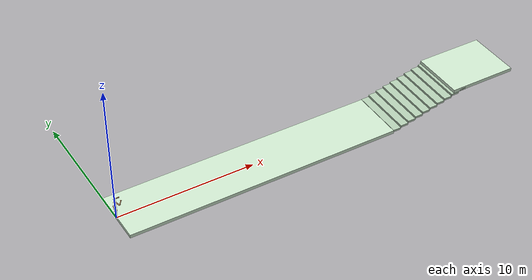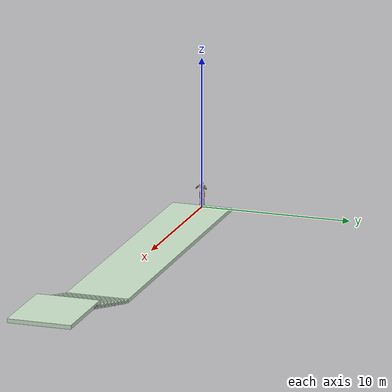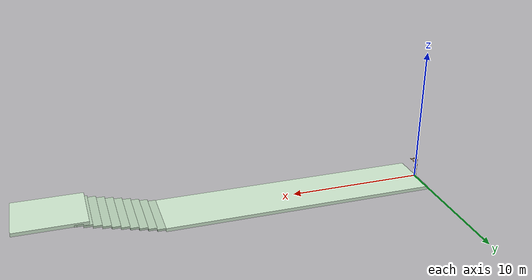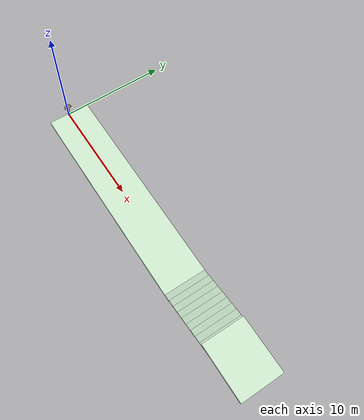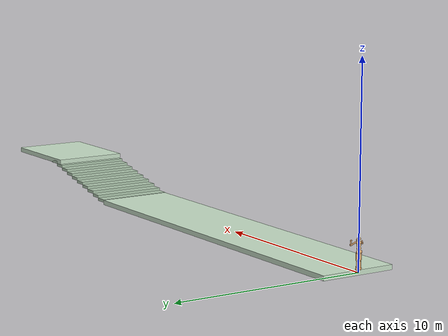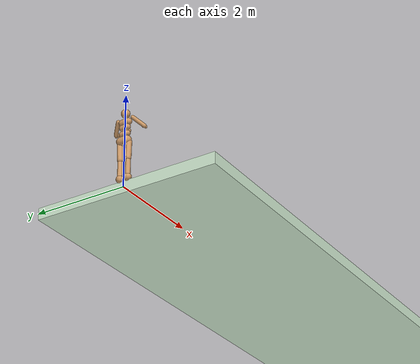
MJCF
<mujoco model="humanoid">
    <compiler angle="degree" inertiafromgeom="true"/>
    <default>
        <joint armature="1" damping="1" limited="true"/>
        <geom conaffinity="1" condim="1" contype="1" margin="0.001" material="geom" rgba="0.8 0.6 .4 1"/>
        <motor ctrllimited="true" ctrlrange="-.4 .4"/>
    </default>
    <option integrator="RK4" iterations="50" solver="PGS" timestep="0.003">
    </option>
    <size nkey="5" nuser_geom="1"/>
    <visual>
        <map fogend="5" fogstart="3"/>
    </visual>
    <asset>
        <texture builtin="gradient" height="100" rgb1=".4 .5 .6" rgb2="0 0 0" type="skybox" width="100"/>
        <texture builtin="flat" height="1278" mark="cross" markrgb="1 1 1" name="texgeom" random="0.01" rgb1="0.8 0.6 0.4" rgb2="0.8 0.6 0.4" type="cube" width="127"/>
        <texture builtin="checker" height="100" name="texplane" rgb1="0 0 0" rgb2="0.8 0.8 0.8" type="2d" width="100"/>
        <material name="MatPlane" reflectance="0.5" shininess="1" specular="1" texrepeat="60 60" texture="texplane"/>
        <material name="geom" texture="texgeom" texuniform="true"/>
    </asset>
    <worldbody>
        <light cutoff="100" diffuse="1 1 1" dir="-0 0 -1.3" directional="true" exponent="1" pos="0 0 1.3" specular=".1 .1 .1"/>

        <!-- Stairs configuration: 10 steps, each 0.6m deep, 0.15m high, 2m wide -->
        <!-- Extended starting platform - 20m of flat terrain before stairs -->
        <!-- Agent spawns at x=0, stairs begin at x=20 -->
        <geom condim="3" friction="1 .1 .1" material="MatPlane" name="start_platform" pos="10 0 0" rgba="0.8 0.9 0.8 1" size="10 2 0.125" type="box"/>

        <!-- Stair steps - start at x=20 -->
        <geom condim="3" friction="1 .1 .1" material="MatPlane" name="stair_1" pos="20.3 0 0.075" rgba="0.7 0.8 0.7 1" size="0.3 2 0.075" type="box"/>
        <geom condim="3" friction="1 .1 .1" material="MatPlane" name="stair_2" pos="20.9 0 0.225" rgba="0.7 0.8 0.7 1" size="0.3 2 0.075" type="box"/>
        <geom condim="3" friction="1 .1 .1" material="MatPlane" name="stair_3" pos="21.5 0 0.375" rgba="0.7 0.8 0.7 1" size="0.3 2 0.075" type="box"/>
        <geom condim="3" friction="1 .1 .1" material="MatPlane" name="stair_4" pos="22.1 0 0.525" rgba="0.7 0.8 0.7 1" size="0.3 2 0.075" type="box"/>
        <geom condim="3" friction="1 .1 .1" material="MatPlane" name="stair_5" pos="22.7 0 0.675" rgba="0.7 0.8 0.7 1" size="0.3 2 0.075" type="box"/>
        <geom condim="3" friction="1 .1 .1" material="MatPlane" name="stair_6" pos="23.3 0 0.825" rgba="0.7 0.8 0.7 1" size="0.3 2 0.075" type="box"/>
        <geom condim="3" friction="1 .1 .1" material="MatPlane" name="stair_7" pos="23.9 0 0.975" rgba="0.7 0.8 0.7 1" size="0.3 2 0.075" type="box"/>
        <geom condim="3" friction="1 .1 .1" material="MatPlane" name="stair_8" pos="24.5 0 1.125" rgba="0.7 0.8 0.7 1" size="0.3 2 0.075" type="box"/>
        <geom condim="3" friction="1 .1 .1" material="MatPlane" name="stair_9" pos="25.1 0 1.275" rgba="0.7 0.8 0.7 1" size="0.3 2 0.075" type="box"/>
        <geom condim="3" friction="1 .1 .1" material="MatPlane" name="stair_10" pos="25.7 0 1.425" rgba="0.7 0.8 0.7 1" size="0.3 2 0.075" type="box"/>

        <!-- End platform (flat area after stairs) -->
        <geom condim="3" friction="1 .1 .1" material="MatPlane" name="end_platform" pos="27.5 0 1.5" rgba="0.8 0.9 0.8 1" size="2.5 2 0.125" type="box"/>
        <body name="torso" pos="0 0 1.4">
            <camera name="track" mode="trackcom" pos="0 -4 0" xyaxes="1 0 0 0 0 1"/>
            <joint armature="0" damping="0" limited="false" name="root" pos="0 0 0" stiffness="0" type="free"/>
            <geom fromto="0 -.07 0 0 .07 0" name="torso1" size="0.07" type="capsule"/>
            <geom name="head" pos="0 0 .19" size=".09" type="sphere" user="258"/>
            <geom fromto="-.01 -.06 -.12 -.01 .06 -.12" name="uwaist" size="0.06" type="capsule"/>
            <body name="lwaist" pos="-.01 0 -0.260" quat="1.000 0 -0.002 0">
                <geom fromto="0 -.06 0 0 .06 0" name="lwaist" size="0.06" type="capsule"/>
                <joint armature="0.02" axis="0 0 1" damping="5" name="abdomen_z" pos="0 0 0.065" range="-45 45" stiffness="20" type="hinge"/>
                <joint armature="0.02" axis="0 1 0" damping="5" name="abdomen_y" pos="0 0 0.065" range="-75 30" stiffness="10" type="hinge"/>
                <body name="pelvis" pos="0 0 -0.165" quat="1.000 0 -0.002 0">
                    <joint armature="0.02" axis="1 0 0" damping="5" name="abdomen_x" pos="0 0 0.1" range="-35 35" stiffness="10" type="hinge"/>
                    <geom fromto="-.02 -.07 0 -.02 .07 0" name="butt" size="0.09" type="capsule"/>
                    <body name="right_thigh" pos="0 -0.1 -0.04">
                        <joint armature="0.01" axis="1 0 0" damping="5" name="right_hip_x" pos="0 0 0" range="-25 5" stiffness="10" type="hinge"/>
                        <joint armature="0.01" axis="0 0 1" damping="5" name="right_hip_z" pos="0 0 0" range="-60 35" stiffness="10" type="hinge"/>
                        <joint armature="0.0080" axis="0 1 0" damping="5" name="right_hip_y" pos="0 0 0" range="-110 20" stiffness="20" type="hinge"/>
                        <geom fromto="0 0 0 0 0.01 -.34" name="right_thigh1" size="0.06" type="capsule"/>
                        <body name="right_shin" pos="0 0.01 -0.403">
                            <joint armature="0.0060" axis="0 -1 0" name="right_knee" pos="0 0 .02" range="-160 -2" type="hinge"/>
                            <geom fromto="0 0 0 0 0 -.3" name="right_shin1" size="0.049" type="capsule"/>
                            <body name="right_foot" pos="0 0 -0.45">
                                <geom name="right_foot" pos="0 0 0.1" size="0.075" type="sphere" user="0"/>
                            </body>
                        </body>
                    </body>
                    <body name="left_thigh" pos="0 0.1 -0.04">
                        <joint armature="0.01" axis="-1 0 0" damping="5" name="left_hip_x" pos="0 0 0" range="-25 5" stiffness="10" type="hinge"/>
                        <joint armature="0.01" axis="0 0 -1" damping="5" name="left_hip_z" pos="0 0 0" range="-60 35" stiffness="10" type="hinge"/>
                        <joint armature="0.01" axis="0 1 0" damping="5" name="left_hip_y" pos="0 0 0" range="-110 20" stiffness="20" type="hinge"/>
                        <geom fromto="0 0 0 0 -0.01 -.34" name="left_thigh1" size="0.06" type="capsule"/>
                        <body name="left_shin" pos="0 -0.01 -0.403">
                            <joint armature="0.0060" axis="0 -1 0" name="left_knee" pos="0 0 .02" range="-160 -2" stiffness="1" type="hinge"/>
                            <geom fromto="0 0 0 0 0 -.3" name="left_shin1" size="0.049" type="capsule"/>
                            <body name="left_foot" pos="0 0 -0.45">
                                <geom name="left_foot" type="sphere" size="0.075" pos="0 0 0.1" user="0" />
                            </body>
                        </body>
                    </body>
                </body>
            </body>
            <body name="right_upper_arm" pos="0 -0.17 0.06">
                <joint armature="0.0068" axis="2 1 1" name="right_shoulder1" pos="0 0 0" range="-85 60" stiffness="1" type="hinge"/>
                <joint armature="0.0051" axis="0 -1 1" name="right_shoulder2" pos="0 0 0" range="-85 60" stiffness="1" type="hinge"/>
                <geom fromto="0 0 0 .16 -.16 -.16" name="right_uarm1" size="0.04 0.16" type="capsule"/>
                <body name="right_lower_arm" pos=".18 -.18 -.18">
                    <joint armature="0.0028" axis="0 -1 1" name="right_elbow" pos="0 0 0" range="-90 50" stiffness="0" type="hinge"/>
                    <geom fromto="0.01 0.01 0.01 .17 .17 .17" name="right_larm" size="0.031" type="capsule"/>
                    <geom name="right_hand" pos=".18 .18 .18" size="0.04" type="sphere"/>
                    <camera pos="0 0 0"/>
                </body>
            </body>
            <body name="left_upper_arm" pos="0 0.17 0.06">
                <joint armature="0.0068" axis="2 -1 1" name="left_shoulder1" pos="0 0 0" range="-60 85" stiffness="1" type="hinge"/>
                <joint armature="0.0051" axis="0 1 1" name="left_shoulder2" pos="0 0 0" range="-60 85" stiffness="1" type="hinge"/>
                <geom fromto="0 0 0 .16 .16 -.16" name="left_uarm1" size="0.04 0.16" type="capsule"/>
                <body name="left_lower_arm" pos=".18 .18 -.18">
                    <joint armature="0.0028" axis="0 -1 -1" name="left_elbow" pos="0 0 0" range="-90 50" stiffness="0" type="hinge"/>
                    <geom fromto="0.01 -0.01 0.01 .17 -.17 .17" name="left_larm" size="0.031" type="capsule"/>
                    <geom name="left_hand" pos=".18 -.18 .18" size="0.04" type="sphere"/>
                </body>
            </body>
        </body>
    </worldbody>
    <tendon>
        <fixed name="left_hipknee">
            <joint coef="-1" joint="left_hip_y"/>
            <joint coef="1" joint="left_knee"/>
        </fixed>
        <fixed name="right_hipknee">
            <joint coef="-1" joint="right_hip_y"/>
            <joint coef="1" joint="right_knee"/>
        </fixed>
    </tendon>

    <actuator>
        <motor gear="100" joint="abdomen_y" name="abdomen_y"/>
        <motor gear="100" joint="abdomen_z" name="abdomen_z"/>
        <motor gear="100" joint="abdomen_x" name="abdomen_x"/>
        <motor gear="100" joint="right_hip_x" name="right_hip_x"/>
        <motor gear="100" joint="right_hip_z" name="right_hip_z"/>
        <motor gear="300" joint="right_hip_y" name="right_hip_y"/>
        <motor gear="200" joint="right_knee" name="right_knee"/>
        <motor gear="100" joint="left_hip_x" name="left_hip_x"/>
        <motor gear="100" joint="left_hip_z" name="left_hip_z"/>
        <motor gear="300" joint="left_hip_y" name="left_hip_y"/>
        <motor gear="200" joint="left_knee" name="left_knee"/>
        <motor gear="25" joint="right_shoulder1" name="right_shoulder1"/>
        <motor gear="25" joint="right_shoulder2" name="right_shoulder2"/>
        <motor gear="25" joint="right_elbow" name="right_elbow"/>
        <motor gear="25" joint="left_shoulder1" name="left_shoulder1"/>
        <motor gear="25" joint="left_shoulder2" name="left_shoulder2"/>
        <motor gear="25" joint="left_elbow" name="left_elbow"/>
    </actuator>
</mujoco>
